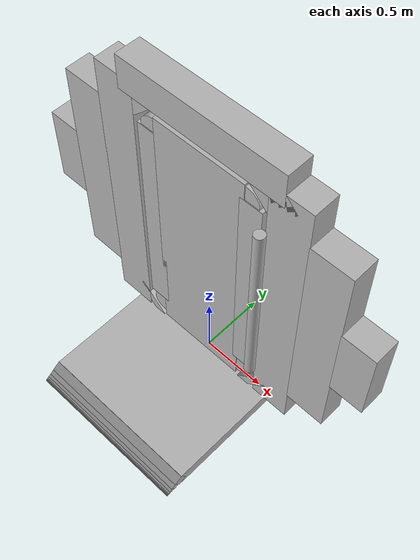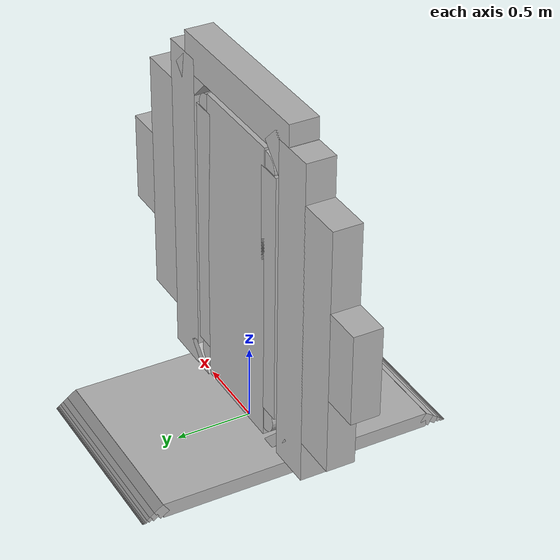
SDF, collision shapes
<?xml version="1.0" ?>
<sdf version="1.5">
  <model name="src_doorway">

    <!-- The big circular frame + the platform -->
    <link name="doorway_frame">

      <!-- Inertia, if needed -->
      <inertial>
        <pose>0 0 1.3 1.57 0 0</pose>
        <mass>300</mass>
        <inertia>
          <ixx>169.65</ixx>
          <ixy>0</ixy>
          <ixz>0</ixz>
          <iyy>169.65</iyy>
          <iyz>0</iyz>
          <izz>337.5</izz>
        </inertia>
      </inertial>

      <!-- The platform with its ramps -->
      <collision name="platform">
        <pose>0 0 0.05 0 0 0</pose>
        <geometry>
          <box>
            <size>1.25 1.82 0.1</size>
          </box>
        </geometry>
      </collision>
      <collision name="front_ramp_1">
        <pose>0 0.92 0.05 0.96 0 0</pose>
        <geometry>
          <box>
            <size>1.25 0.072 0.072</size>
          </box>
        </geometry>
      </collision>
      <collision name="front_ramp_2">
        <pose>0 0.97 0.031 0.96 0 0</pose>
        <geometry>
          <box>
            <size>1.25 0.045 0.045</size>
          </box>
        </geometry>
      </collision>
      <collision name="front_ramp_3">
        <pose>0 1.0 0.02 0.96 0 0</pose>
        <geometry>
          <box>
            <size>1.25 0.028 0.028</size>
          </box>
        </geometry>
      </collision>
      <collision name="front_ramp_4">
        <pose>0 1.02 0.012 0.96 0 0</pose>
        <geometry>
          <box>
            <size>1.25 0.017 0.017</size>
          </box>
        </geometry>
      </collision>
      <collision name="front_ramp_5">
        <pose>0 1.03 0.008 0.96 0 0</pose>
        <geometry>
          <box>
            <size>1.25 0.012 0.012</size>
          </box>
        </geometry>
      </collision>
      <collision name="front_ramp_6">
        <pose>0 1.0375 0.005 0.96 0 0</pose>
        <geometry>
          <box>
            <size>1.25 0.008 0.008</size>
          </box>
        </geometry>
      </collision>
      <collision name="front_ramp_7">
        <pose>0 1.043 0.003 0.96 0 0</pose>
        <geometry>
          <box>
            <size>1.25 0.005 0.005</size>
          </box>
        </geometry>
      </collision>
      <collision name="front_ramp_8">
        <pose>0 1.047 0.002 0.96 0 0</pose>
        <geometry>
          <box>
            <size>1.25 0.0026 0.0026</size>
          </box>
        </geometry>
      </collision>
      <collision name="back_ramp_1">
        <pose>0 -0.92 0.05 -0.96 0 0</pose>
        <geometry>
          <box>
            <size>1.25 0.072 0.072</size>
          </box>
        </geometry>
      </collision>
      <collision name="back_ramp_2">
        <pose>0 -0.97 0.031 -0.96 0 0</pose>
        <geometry>
          <box>
            <size>1.25 0.045 0.045</size>
          </box>
        </geometry>
      </collision>
      <collision name="back_ramp_3">
        <pose>0 -1.0 0.02 -0.96 0 0</pose>
        <geometry>
          <box>
            <size>1.25 0.028 0.028</size>
          </box>
        </geometry>
      </collision>
      <collision name="back_ramp_4">
        <pose>0 -1.02 0.012 -0.96 0 0</pose>
        <geometry>
          <box>
            <size>1.25 0.017 0.017</size>
          </box>
        </geometry>
      </collision>
      <collision name="back_ramp_5">
        <pose>0 -1.03 0.008 -0.96 0 0</pose>
        <geometry>
          <box>
            <size>1.25 0.012 0.012</size>
          </box>
        </geometry>
      </collision>
      <collision name="back_ramp_6">
        <pose>0 -1.0375 0.005 -0.96 0 0</pose>
        <geometry>
          <box>
            <size>1.25 0.008 0.008</size>
          </box>
        </geometry>
      </collision>
      <collision name="back_ramp_7">
        <pose>0 -1.043 0.003 -0.96 0 0</pose>
        <geometry>
          <box>
            <size>1.25 0.005 0.005</size>
          </box>
        </geometry>
      </collision>
      <collision name="back_ramp_8">
        <pose>0 -1.047 0.002 -0.96 0 0</pose>
        <geometry>
          <box>
            <size>1.25 0.0026 0.0026</size>
          </box>
        </geometry>
      </collision>

      <collision name="left_1">
        <pose>0.665 0 1.2 0 0 0</pose>
        <geometry>
          <box>
            <size>0.3 0.19 2.2</size>
          </box>
        </geometry>
      </collision>
      <collision name="left_2">
        <pose>0.96 0 1.21 0 0 0</pose>
        <geometry>
          <box>
            <size>0.3 0.19 1.65</size>
          </box>
        </geometry>
      </collision>
      <collision name="left_3">
        <pose>1.23 0 1.2 0 0 0</pose>
        <geometry>
          <box>
            <size>0.25 0.19 0.6</size>
          </box>
        </geometry>
      </collision>

      <!-- Collision elements in the circular frame -->
      <collision name="right_1">
        <pose>-0.665 0 1.2 0 0 0</pose>
        <geometry>
          <box>
            <size>0.3 0.19 2.2</size>
          </box>
        </geometry>
      </collision>
      <collision name="right_2">
        <pose>-0.96 0 1.21 0 0 0</pose>
        <geometry>
          <box>
            <size>0.3 0.19 1.65</size>
          </box>
        </geometry>
      </collision>
      <collision name="right_3">
        <pose>-1.23 0 1.2 0 0 0</pose>
        <geometry>
          <box>
            <size>0.25 0.19 0.6</size>
          </box>
        </geometry>
      </collision>

      <collision name="top_1">
        <pose>0 0 2.32 0 0 0</pose>
        <geometry>
          <box>
            <size>1.25 0.19 0.25</size>
          </box>
        </geometry>
      </collision>

      <collision name="diagonal_top_left">
        <pose>0.55 0 2.2 0 0.785 0</pose>
        <geometry>
          <box>
            <size>0.3 0.19 0.25</size>
          </box>
        </geometry>
      </collision>

      <collision name="diagonal_top_right">
        <pose>-0.55 0 2.2 0 -0.785 0</pose>
        <geometry>
          <box>
            <size>0.3 0.19 0.25</size>
          </box>
        </geometry>
      </collision>

      <collision name="diagonal_bottom_left">
        <pose>0.5 0 0.185 0 -0.785 0</pose>
        <geometry>
          <box>
            <size>0.3 0.19 0.07</size>
          </box>
        </geometry>
      </collision>

      <collision name="diagonal_bottom_right">
        <pose>-0.5 0 0.185 0 0.785 0</pose>
        <geometry>
          <box>
            <size>0.3 0.19 0.07</size>
          </box>
        </geometry>
      </collision>

      <visual name="visual">
        <geometry>
          <mesh>
            <uri>model://doorway/meshes/doorway_base.dae</uri>
          </mesh>
        </geometry>
      </visual>
    </link>

    <!-- The door -->
    <link name="doorway_door">
      <pose>0 0 1 0 0 0</pose>

      <inertial>
        <pose>0 0 0.14 0 0 0</pose>
        <mass>20</mass>
        <inertia>
          <ixx>6.7268</ixx>
          <ixy>0</ixy>
          <ixz>0</ixz>
          <iyy>8.33</iyy>
          <iyz>0</iyz>
          <izz>1.7268</izz>
        </inertia>
      </inertial>

      <collision name="center">
        <pose>0 0 0.14 0 0 0</pose>
        <geometry>
          <box>
            <size>0.7 0.19 2.03</size>
          </box>
        </geometry>
      </collision>
      <collision name="left">
        <pose>-0.4 0 0.18 0 0 0</pose>
        <geometry>
          <box>
            <size>0.17 0.19 1.7</size>
          </box>
        </geometry>
      </collision>
      <collision name="right">
        <pose>0.4 0 0.18 0 0 0</pose>
        <geometry>
          <box>
            <size>0.17 0.19 1.7</size>
          </box>
        </geometry>
      </collision>
      <collision name="top_left">
        <pose>-0.36 0 1.04 1.57 0 0</pose>
        <geometry>
          <cylinder>
            <radius>0.1</radius>
            <length>0.18</length>
          </cylinder>
        </geometry>
      </collision>
      <collision name="top_right">
        <pose>0.36 0 1.04 1.57 0 0</pose>
        <geometry>
          <cylinder>
            <radius>0.1</radius>
            <length>0.18</length>
          </cylinder>
        </geometry>
      </collision>
      <collision name="bottom_left">
        <pose>-0.36 0 -0.73 1.57 0 0</pose>
        <geometry>
          <cylinder>
            <radius>0.1</radius>
            <length>0.18</length>
          </cylinder>
        </geometry>
      </collision>
      <collision name="bottom_right">
        <pose>0.36 0 -0.73 1.57 0 0</pose>
        <geometry>
          <cylinder>
            <radius>0.1</radius>
            <length>0.18</length>
          </cylinder>
        </geometry>
      </collision>

      <collision name="hinge">
        <pose>0.507 -0.135 0.17 0 0 0</pose>
        <geometry>
          <cylinder>
            <radius>0.038</radius>
            <length>1.48</length>
          </cylinder>
        </geometry>
      </collision>

      <visual name="visual">
        <pose>0 0 -1 0 0 0</pose>
        <geometry>
          <mesh>
            <uri>model://doorway/meshes/doorway_door.dae</uri>
          </mesh>
        </geometry>
      </visual>
    </link>

    <!-- Joint connecting the frame and the door -->
    <joint name="hinge" type="revolute">
        <parent>doorway_frame</parent>
        <child>doorway_door</child>
        <pose>0.5 -0.14 0 0 0 0</pose>
        <axis>
          <xyz>0 0 1</xyz>
          <limit>
            <lower>0</lower>
            <upper>3</upper>
          </limit>
          <dynamics>
            <damping>1.0</damping>
            <friction>1.0</friction>
          </dynamics>
          <use_parent_model_frame>true</use_parent_model_frame>
        </axis>
        <physics>
          <ode>
            <cfm_damping>1</cfm_damping>
          </ode>
        </physics>
      </joint>

  </model>
</sdf>
